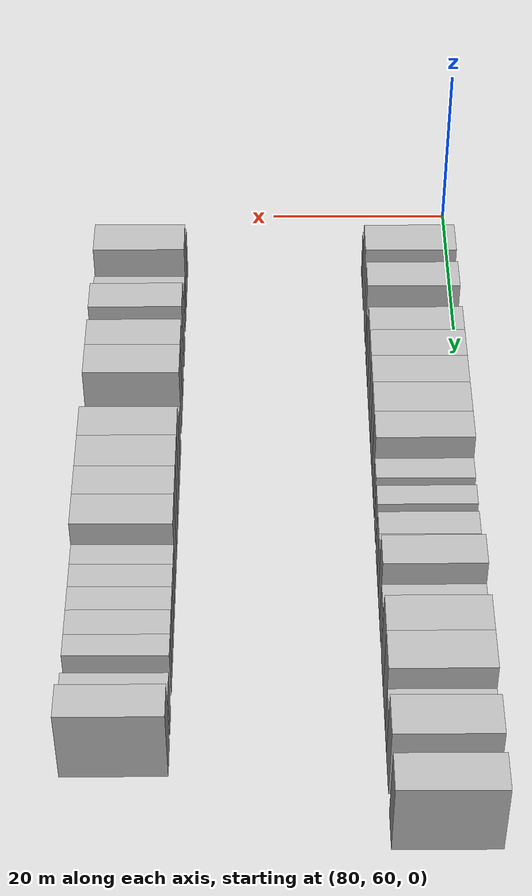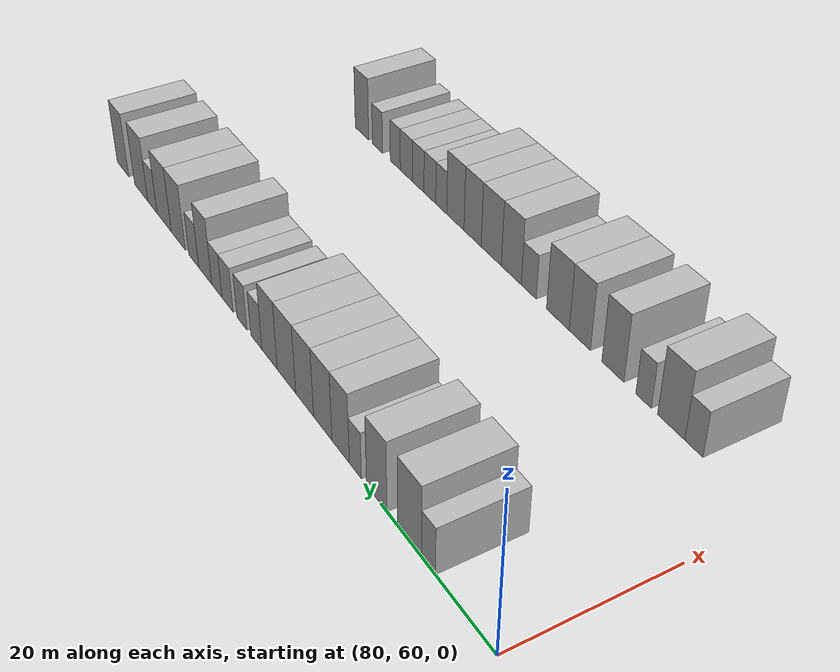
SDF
<sdf version="1.6">
 <world name="default">
  <model name="building_616">
   <static>1</static>
   <pose>85.0000 71.2811 0 0.000000 0.000000 0.000000</pose>
   <link name="link">
    <pose>0 0 3.00 0 0 0</pose>
    <collision name="collision"><geometry><box><size>10.0000 2.4149 6.0000</size></box></geometry></collision>
    <visual name="visual">
     <cast_shadows>0</cast_shadows>
     <geometry><box><size>10.0000 2.4149 6.0000</size></box></geometry>
     <material>
      <script>
       <uri>model://HANNAS_wall/materials/scripts</uri>
       <uri>model://HANNAS_wall/materials/textures</uri>
       <name>vrc/HANNAS_wall</name>
      </script>
     </material>
    </visual>
   </link>
  </model>
  <model name="building_617">
   <static>1</static>
   <pose>85.0000 74.6415 0 0.000000 0.000000 0.000000</pose>
   <link name="link">
    <pose>0 0 4.50 0 0 0</pose>
    <collision name="collision"><geometry><box><size>10.0000 4.3059 9.0000</size></box></geometry></collision>
    <visual name="visual">
     <cast_shadows>0</cast_shadows>
     <geometry><box><size>10.0000 4.3059 9.0000</size></box></geometry>
     <material>
      <script>
       <uri>model://HANNAS_wall/materials/scripts</uri>
       <uri>model://HANNAS_wall/materials/textures</uri>
       <name>vrc/HANNAS_wall</name>
      </script>
     </material>
    </visual>
   </link>
  </model>
  <model name="building_618">
   <static>1</static>
   <pose>85.0000 80.7590 0 0.000000 0.000000 0.000000</pose>
   <link name="link">
    <pose>0 0 4.50 0 0 0</pose>
    <collision name="collision"><geometry><box><size>10.0000 3.9290 9.0000</size></box></geometry></collision>
    <visual name="visual">
     <cast_shadows>0</cast_shadows>
     <geometry><box><size>10.0000 3.9290 9.0000</size></box></geometry>
     <material>
      <script>
       <uri>model://HANNAS_wall/materials/scripts</uri>
       <uri>model://HANNAS_wall/materials/textures</uri>
       <name>vrc/HANNAS_wall</name>
      </script>
     </material>
    </visual>
   </link>
  </model>
  <model name="building_619">
   <static>1</static>
   <pose>85.0000 84.9312 0 0.000000 0.000000 0.000000</pose>
   <link name="link">
    <pose>0 0 3.00 0 0 0</pose>
    <collision name="collision"><geometry><box><size>10.0000 2.4154 6.0000</size></box></geometry></collision>
    <visual name="visual">
     <cast_shadows>0</cast_shadows>
     <geometry><box><size>10.0000 2.4154 6.0000</size></box></geometry>
     <material>
      <script>
       <uri>model://HANNAS_wall/materials/scripts</uri>
       <uri>model://HANNAS_wall/materials/textures</uri>
       <name>vrc/HANNAS_wall</name>
      </script>
     </material>
    </visual>
   </link>
  </model>
  <model name="building_620">
   <static>1</static>
   <pose>85.0000 87.9405 0 0.000000 0.000000 0.000000</pose>
   <link name="link">
    <pose>0 0 4.50 0 0 0</pose>
    <collision name="collision"><geometry><box><size>10.0000 3.6033 9.0000</size></box></geometry></collision>
    <visual name="visual">
     <cast_shadows>0</cast_shadows>
     <geometry><box><size>10.0000 3.6033 9.0000</size></box></geometry>
     <material>
      <script>
       <uri>model://HANNAS_wall/materials/scripts</uri>
       <uri>model://HANNAS_wall/materials/textures</uri>
       <name>vrc/HANNAS_wall</name>
      </script>
     </material>
    </visual>
   </link>
  </model>
  <model name="building_621">
   <static>1</static>
   <pose>85.0000 91.7207 0 0.000000 0.000000 0.000000</pose>
   <link name="link">
    <pose>0 0 4.50 0 0 0</pose>
    <collision name="collision"><geometry><box><size>10.0000 3.9570 9.0000</size></box></geometry></collision>
    <visual name="visual">
     <cast_shadows>0</cast_shadows>
     <geometry><box><size>10.0000 3.9570 9.0000</size></box></geometry>
     <material>
      <script>
       <uri>model://HANNAS_wall/materials/scripts</uri>
       <uri>model://HANNAS_wall/materials/textures</uri>
       <name>vrc/HANNAS_wall</name>
      </script>
     </material>
    </visual>
   </link>
  </model>
  <model name="building_622">
   <static>1</static>
   <pose>85.0000 95.6966 0 0.000000 0.000000 0.000000</pose>
   <link name="link">
    <pose>0 0 4.50 0 0 0</pose>
    <collision name="collision"><geometry><box><size>10.0000 3.9948 9.0000</size></box></geometry></collision>
    <visual name="visual">
     <cast_shadows>0</cast_shadows>
     <geometry><box><size>10.0000 3.9948 9.0000</size></box></geometry>
     <material>
      <script>
       <uri>model://HANNAS_wall/materials/scripts</uri>
       <uri>model://HANNAS_wall/materials/textures</uri>
       <name>vrc/HANNAS_wall</name>
      </script>
     </material>
    </visual>
   </link>
  </model>
  <model name="building_623">
   <static>1</static>
   <pose>85.0000 99.8428 0 0.000000 0.000000 0.000000</pose>
   <link name="link">
    <pose>0 0 4.50 0 0 0</pose>
    <collision name="collision"><geometry><box><size>10.0000 4.2977 9.0000</size></box></geometry></collision>
    <visual name="visual">
     <cast_shadows>0</cast_shadows>
     <geometry><box><size>10.0000 4.2977 9.0000</size></box></geometry>
     <material>
      <script>
       <uri>model://HANNAS_wall/materials/scripts</uri>
       <uri>model://HANNAS_wall/materials/textures</uri>
       <name>vrc/HANNAS_wall</name>
      </script>
     </material>
    </visual>
   </link>
  </model>
  <model name="building_624">
   <static>1</static>
   <pose>85.0000 103.8436 0 0.000000 0.000000 0.000000</pose>
   <link name="link">
    <pose>0 0 4.50 0 0 0</pose>
    <collision name="collision"><geometry><box><size>10.0000 3.7039 9.0000</size></box></geometry></collision>
    <visual name="visual">
     <cast_shadows>0</cast_shadows>
     <geometry><box><size>10.0000 3.7039 9.0000</size></box></geometry>
     <material>
      <script>
       <uri>model://HANNAS_wall/materials/scripts</uri>
       <uri>model://HANNAS_wall/materials/textures</uri>
       <name>vrc/HANNAS_wall</name>
      </script>
     </material>
    </visual>
   </link>
  </model>
  <model name="building_625">
   <static>1</static>
   <pose>85.0000 107.0661 0 0.000000 0.000000 0.000000</pose>
   <link name="link">
    <pose>0 0 3.00 0 0 0</pose>
    <collision name="collision"><geometry><box><size>10.0000 2.7411 6.0000</size></box></geometry></collision>
    <visual name="visual">
     <cast_shadows>0</cast_shadows>
     <geometry><box><size>10.0000 2.7411 6.0000</size></box></geometry>
     <material>
      <script>
       <uri>model://HANNAS_wall/materials/scripts</uri>
       <uri>model://HANNAS_wall/materials/textures</uri>
       <name>vrc/HANNAS_wall</name>
      </script>
     </material>
    </visual>
   </link>
  </model>
  <model name="building_626">
   <static>1</static>
   <pose>85.0000 110.7178 0 0.000000 0.000000 0.000000</pose>
   <link name="link">
    <pose>0 0 3.00 0 0 0</pose>
    <collision name="collision"><geometry><box><size>10.0000 2.5623 6.0000</size></box></geometry></collision>
    <visual name="visual">
     <cast_shadows>0</cast_shadows>
     <geometry><box><size>10.0000 2.5623 6.0000</size></box></geometry>
     <material>
      <script>
       <uri>model://HANNAS_wall/materials/scripts</uri>
       <uri>model://HANNAS_wall/materials/textures</uri>
       <name>vrc/HANNAS_wall</name>
      </script>
     </material>
    </visual>
   </link>
  </model>
  <model name="building_627">
   <static>1</static>
   <pose>85.0000 114.4735 0 0.000000 0.000000 0.000000</pose>
   <link name="link">
    <pose>0 0 3.00 0 0 0</pose>
    <collision name="collision"><geometry><box><size>10.0000 2.9490 6.0000</size></box></geometry></collision>
    <visual name="visual">
     <cast_shadows>0</cast_shadows>
     <geometry><box><size>10.0000 2.9490 6.0000</size></box></geometry>
     <material>
      <script>
       <uri>model://HANNAS_wall/materials/scripts</uri>
       <uri>model://HANNAS_wall/materials/textures</uri>
       <name>vrc/HANNAS_wall</name>
      </script>
     </material>
    </visual>
   </link>
  </model>
  <model name="building_628">
   <static>1</static>
   <pose>85.0000 117.3416 0 0.000000 0.000000 0.000000</pose>
   <link name="link">
    <pose>0 0 3.00 0 0 0</pose>
    <collision name="collision"><geometry><box><size>10.0000 2.7871 6.0000</size></box></geometry></collision>
    <visual name="visual">
     <cast_shadows>0</cast_shadows>
     <geometry><box><size>10.0000 2.7871 6.0000</size></box></geometry>
     <material>
      <script>
       <uri>model://HANNAS_wall/materials/scripts</uri>
       <uri>model://HANNAS_wall/materials/textures</uri>
       <name>vrc/HANNAS_wall</name>
      </script>
     </material>
    </visual>
   </link>
  </model>
  <model name="building_629">
   <static>1</static>
   <pose>85.0000 120.5587 0 0.000000 0.000000 0.000000</pose>
   <link name="link">
    <pose>0 0 4.50 0 0 0</pose>
    <collision name="collision"><geometry><box><size>10.0000 3.6473 9.0000</size></box></geometry></collision>
    <visual name="visual">
     <cast_shadows>0</cast_shadows>
     <geometry><box><size>10.0000 3.6473 9.0000</size></box></geometry>
     <material>
      <script>
       <uri>model://HANNAS_wall/materials/scripts</uri>
       <uri>model://HANNAS_wall/materials/textures</uri>
       <name>vrc/HANNAS_wall</name>
      </script>
     </material>
    </visual>
   </link>
  </model>
  <model name="building_630">
   <static>1</static>
   <pose>85.0000 123.8173 0 0.000000 0.000000 0.000000</pose>
   <link name="link">
    <pose>0 0 3.00 0 0 0</pose>
    <collision name="collision"><geometry><box><size>10.0000 2.8698 6.0000</size></box></geometry></collision>
    <visual name="visual">
     <cast_shadows>0</cast_shadows>
     <geometry><box><size>10.0000 2.8698 6.0000</size></box></geometry>
     <material>
      <script>
       <uri>model://HANNAS_wall/materials/scripts</uri>
       <uri>model://HANNAS_wall/materials/textures</uri>
       <name>vrc/HANNAS_wall</name>
      </script>
     </material>
    </visual>
   </link>
  </model>
  <model name="building_631">
   <static>1</static>
   <pose>85.0000 128.3548 0 0.000000 0.000000 0.000000</pose>
   <link name="link">
    <pose>0 0 4.50 0 0 0</pose>
    <collision name="collision"><geometry><box><size>10.0000 4.2053 9.0000</size></box></geometry></collision>
    <visual name="visual">
     <cast_shadows>0</cast_shadows>
     <geometry><box><size>10.0000 4.2053 9.0000</size></box></geometry>
     <material>
      <script>
       <uri>model://HANNAS_wall/materials/scripts</uri>
       <uri>model://HANNAS_wall/materials/textures</uri>
       <name>vrc/HANNAS_wall</name>
      </script>
     </material>
    </visual>
   </link>
  </model>
  <model name="building_632">
   <static>1</static>
   <pose>85.0000 132.6540 0 0.000000 0.000000 0.000000</pose>
   <link name="link">
    <pose>0 0 4.50 0 0 0</pose>
    <collision name="collision"><geometry><box><size>10.0000 4.3931 9.0000</size></box></geometry></collision>
    <visual name="visual">
     <cast_shadows>0</cast_shadows>
     <geometry><box><size>10.0000 4.3931 9.0000</size></box></geometry>
     <material>
      <script>
       <uri>model://HANNAS_wall/materials/scripts</uri>
       <uri>model://HANNAS_wall/materials/textures</uri>
       <name>vrc/HANNAS_wall</name>
      </script>
     </material>
    </visual>
   </link>
  </model>
  <model name="building_633">
   <static>1</static>
   <pose>85.0000 136.3234 0 0.000000 0.000000 0.000000</pose>
   <link name="link">
    <pose>0 0 3.00 0 0 0</pose>
    <collision name="collision"><geometry><box><size>10.0000 2.9456 6.0000</size></box></geometry></collision>
    <visual name="visual">
     <cast_shadows>0</cast_shadows>
     <geometry><box><size>10.0000 2.9456 6.0000</size></box></geometry>
     <material>
      <script>
       <uri>model://HANNAS_wall/materials/scripts</uri>
       <uri>model://HANNAS_wall/materials/textures</uri>
       <name>vrc/HANNAS_wall</name>
      </script>
     </material>
    </visual>
   </link>
  </model>
  <model name="building_634">
   <static>1</static>
   <pose>85.0000 139.9516 0 0.000000 0.000000 0.000000</pose>
   <link name="link">
    <pose>0 0 4.50 0 0 0</pose>
    <collision name="collision"><geometry><box><size>10.0000 4.3108 9.0000</size></box></geometry></collision>
    <visual name="visual">
     <cast_shadows>0</cast_shadows>
     <geometry><box><size>10.0000 4.3108 9.0000</size></box></geometry>
     <material>
      <script>
       <uri>model://HANNAS_wall/materials/scripts</uri>
       <uri>model://HANNAS_wall/materials/textures</uri>
       <name>vrc/HANNAS_wall</name>
      </script>
     </material>
    </visual>
   </link>
  </model>
  <model name="building_635">
   <static>1</static>
   <pose>85.0000 146.0807 0 0.000000 0.000000 0.000000</pose>
   <link name="link">
    <pose>0 0 4.50 0 0 0</pose>
    <collision name="collision"><geometry><box><size>10.0000 3.9475 9.0000</size></box></geometry></collision>
    <visual name="visual">
     <cast_shadows>0</cast_shadows>
     <geometry><box><size>10.0000 3.9475 9.0000</size></box></geometry>
     <material>
      <script>
       <uri>model://HANNAS_wall/materials/scripts</uri>
       <uri>model://HANNAS_wall/materials/textures</uri>
       <name>vrc/HANNAS_wall</name>
      </script>
     </material>
    </visual>
   </link>
  </model>
  <model name="building_849">
   <static>1</static>
   <pose>115.0000 70.9228 0 0.000000 0.000000 0.000000</pose>
   <link name="link">
    <pose>0 0 3.00 0 0 0</pose>
    <collision name="collision"><geometry><box><size>10.0000 2.7869 6.0000</size></box></geometry></collision>
    <visual name="visual">
     <cast_shadows>0</cast_shadows>
     <geometry><box><size>10.0000 2.7869 6.0000</size></box></geometry>
     <material>
      <script>
       <uri>model://HANNAS_wall/materials/scripts</uri>
       <uri>model://HANNAS_wall/materials/textures</uri>
       <name>vrc/HANNAS_wall</name>
      </script>
     </material>
    </visual>
   </link>
  </model>
  <model name="building_850">
   <static>1</static>
   <pose>115.0000 74.4618 0 0.000000 0.000000 0.000000</pose>
   <link name="link">
    <pose>0 0 4.50 0 0 0</pose>
    <collision name="collision"><geometry><box><size>10.0000 4.2910 9.0000</size></box></geometry></collision>
    <visual name="visual">
     <cast_shadows>0</cast_shadows>
     <geometry><box><size>10.0000 4.2910 9.0000</size></box></geometry>
     <material>
      <script>
       <uri>model://HANNAS_wall/materials/scripts</uri>
       <uri>model://HANNAS_wall/materials/textures</uri>
       <name>vrc/HANNAS_wall</name>
      </script>
     </material>
    </visual>
   </link>
  </model>
  <model name="building_851">
   <static>1</static>
   <pose>115.0000 78.8880 0 0.000000 0.000000 0.000000</pose>
   <link name="link">
    <pose>0 0 3.00 0 0 0</pose>
    <collision name="collision"><geometry><box><size>10.0000 2.5614 6.0000</size></box></geometry></collision>
    <visual name="visual">
     <cast_shadows>0</cast_shadows>
     <geometry><box><size>10.0000 2.5614 6.0000</size></box></geometry>
     <material>
      <script>
       <uri>model://HANNAS_wall/materials/scripts</uri>
       <uri>model://HANNAS_wall/materials/textures</uri>
       <name>vrc/HANNAS_wall</name>
      </script>
     </material>
    </visual>
   </link>
  </model>
  <model name="building_852">
   <static>1</static>
   <pose>115.0000 84.0774 0 0.000000 0.000000 0.000000</pose>
   <link name="link">
    <pose>0 0 4.50 0 0 0</pose>
    <collision name="collision"><geometry><box><size>10.0000 3.8174 9.0000</size></box></geometry></collision>
    <visual name="visual">
     <cast_shadows>0</cast_shadows>
     <geometry><box><size>10.0000 3.8174 9.0000</size></box></geometry>
     <material>
      <script>
       <uri>model://HANNAS_wall/materials/scripts</uri>
       <uri>model://HANNAS_wall/materials/textures</uri>
       <name>vrc/HANNAS_wall</name>
      </script>
     </material>
    </visual>
   </link>
  </model>
  <model name="building_853">
   <static>1</static>
   <pose>115.0000 89.9340 0 0.000000 0.000000 0.000000</pose>
   <link name="link">
    <pose>0 0 4.50 0 0 0</pose>
    <collision name="collision"><geometry><box><size>10.0000 3.8958 9.0000</size></box></geometry></collision>
    <visual name="visual">
     <cast_shadows>0</cast_shadows>
     <geometry><box><size>10.0000 3.8958 9.0000</size></box></geometry>
     <material>
      <script>
       <uri>model://HANNAS_wall/materials/scripts</uri>
       <uri>model://HANNAS_wall/materials/textures</uri>
       <name>vrc/HANNAS_wall</name>
      </script>
     </material>
    </visual>
   </link>
  </model>
  <model name="building_854">
   <static>1</static>
   <pose>115.0000 94.0223 0 0.000000 0.000000 0.000000</pose>
   <link name="link">
    <pose>0 0 4.50 0 0 0</pose>
    <collision name="collision"><geometry><box><size>10.0000 4.2808 9.0000</size></box></geometry></collision>
    <visual name="visual">
     <cast_shadows>0</cast_shadows>
     <geometry><box><size>10.0000 4.2808 9.0000</size></box></geometry>
     <material>
      <script>
       <uri>model://HANNAS_wall/materials/scripts</uri>
       <uri>model://HANNAS_wall/materials/textures</uri>
       <name>vrc/HANNAS_wall</name>
      </script>
     </material>
    </visual>
   </link>
  </model>
  <model name="building_855">
   <static>1</static>
   <pose>115.0000 99.6557 0 0.000000 0.000000 0.000000</pose>
   <link name="link">
    <pose>0 0 3.00 0 0 0</pose>
    <collision name="collision"><geometry><box><size>10.0000 2.9859 6.0000</size></box></geometry></collision>
    <visual name="visual">
     <cast_shadows>0</cast_shadows>
     <geometry><box><size>10.0000 2.9859 6.0000</size></box></geometry>
     <material>
      <script>
       <uri>model://HANNAS_wall/materials/scripts</uri>
       <uri>model://HANNAS_wall/materials/textures</uri>
       <name>vrc/HANNAS_wall</name>
      </script>
     </material>
    </visual>
   </link>
  </model>
  <model name="building_856">
   <static>1</static>
   <pose>115.0000 103.1845 0 0.000000 0.000000 0.000000</pose>
   <link name="link">
    <pose>0 0 4.50 0 0 0</pose>
    <collision name="collision"><geometry><box><size>10.0000 4.0718 9.0000</size></box></geometry></collision>
    <visual name="visual">
     <cast_shadows>0</cast_shadows>
     <geometry><box><size>10.0000 4.0718 9.0000</size></box></geometry>
     <material>
      <script>
       <uri>model://HANNAS_wall/materials/scripts</uri>
       <uri>model://HANNAS_wall/materials/textures</uri>
       <name>vrc/HANNAS_wall</name>
      </script>
     </material>
    </visual>
   </link>
  </model>
  <model name="building_857">
   <static>1</static>
   <pose>115.0000 107.3602 0 0.000000 0.000000 0.000000</pose>
   <link name="link">
    <pose>0 0 4.50 0 0 0</pose>
    <collision name="collision"><geometry><box><size>10.0000 4.2795 9.0000</size></box></geometry></collision>
    <visual name="visual">
     <cast_shadows>0</cast_shadows>
     <geometry><box><size>10.0000 4.2795 9.0000</size></box></geometry>
     <material>
      <script>
       <uri>model://HANNAS_wall/materials/scripts</uri>
       <uri>model://HANNAS_wall/materials/textures</uri>
       <name>vrc/HANNAS_wall</name>
      </script>
     </material>
    </visual>
   </link>
  </model>
  <model name="building_858">
   <static>1</static>
   <pose>115.0000 111.3914 0 0.000000 0.000000 0.000000</pose>
   <link name="link">
    <pose>0 0 4.50 0 0 0</pose>
    <collision name="collision"><geometry><box><size>10.0000 3.7830 9.0000</size></box></geometry></collision>
    <visual name="visual">
     <cast_shadows>0</cast_shadows>
     <geometry><box><size>10.0000 3.7830 9.0000</size></box></geometry>
     <material>
      <script>
       <uri>model://HANNAS_wall/materials/scripts</uri>
       <uri>model://HANNAS_wall/materials/textures</uri>
       <name>vrc/HANNAS_wall</name>
      </script>
     </material>
    </visual>
   </link>
  </model>
  <model name="building_859">
   <static>1</static>
   <pose>115.0000 115.2503 0 0.000000 0.000000 0.000000</pose>
   <link name="link">
    <pose>0 0 4.50 0 0 0</pose>
    <collision name="collision"><geometry><box><size>10.0000 3.9346 9.0000</size></box></geometry></collision>
    <visual name="visual">
     <cast_shadows>0</cast_shadows>
     <geometry><box><size>10.0000 3.9346 9.0000</size></box></geometry>
     <material>
      <script>
       <uri>model://HANNAS_wall/materials/scripts</uri>
       <uri>model://HANNAS_wall/materials/textures</uri>
       <name>vrc/HANNAS_wall</name>
      </script>
     </material>
    </visual>
   </link>
  </model>
  <model name="building_860">
   <static>1</static>
   <pose>115.0000 118.4764 0 0.000000 0.000000 0.000000</pose>
   <link name="link">
    <pose>0 0 3.00 0 0 0</pose>
    <collision name="collision"><geometry><box><size>10.0000 2.5176 6.0000</size></box></geometry></collision>
    <visual name="visual">
     <cast_shadows>0</cast_shadows>
     <geometry><box><size>10.0000 2.5176 6.0000</size></box></geometry>
     <material>
      <script>
       <uri>model://HANNAS_wall/materials/scripts</uri>
       <uri>model://HANNAS_wall/materials/textures</uri>
       <name>vrc/HANNAS_wall</name>
      </script>
     </material>
    </visual>
   </link>
  </model>
  <model name="building_861">
   <static>1</static>
   <pose>115.0000 121.1455 0 0.000000 0.000000 0.000000</pose>
   <link name="link">
    <pose>0 0 3.00 0 0 0</pose>
    <collision name="collision"><geometry><box><size>10.0000 2.8207 6.0000</size></box></geometry></collision>
    <visual name="visual">
     <cast_shadows>0</cast_shadows>
     <geometry><box><size>10.0000 2.8207 6.0000</size></box></geometry>
     <material>
      <script>
       <uri>model://HANNAS_wall/materials/scripts</uri>
       <uri>model://HANNAS_wall/materials/textures</uri>
       <name>vrc/HANNAS_wall</name>
      </script>
     </material>
    </visual>
   </link>
  </model>
  <model name="building_862">
   <static>1</static>
   <pose>115.0000 123.9806 0 0.000000 0.000000 0.000000</pose>
   <link name="link">
    <pose>0 0 3.00 0 0 0</pose>
    <collision name="collision"><geometry><box><size>10.0000 2.8494 6.0000</size></box></geometry></collision>
    <visual name="visual">
     <cast_shadows>0</cast_shadows>
     <geometry><box><size>10.0000 2.8494 6.0000</size></box></geometry>
     <material>
      <script>
       <uri>model://HANNAS_wall/materials/scripts</uri>
       <uri>model://HANNAS_wall/materials/textures</uri>
       <name>vrc/HANNAS_wall</name>
      </script>
     </material>
    </visual>
   </link>
  </model>
  <model name="building_863">
   <static>1</static>
   <pose>115.0000 126.8814 0 0.000000 0.000000 0.000000</pose>
   <link name="link">
    <pose>0 0 3.00 0 0 0</pose>
    <collision name="collision"><geometry><box><size>10.0000 2.9522 6.0000</size></box></geometry></collision>
    <visual name="visual">
     <cast_shadows>0</cast_shadows>
     <geometry><box><size>10.0000 2.9522 6.0000</size></box></geometry>
     <material>
      <script>
       <uri>model://HANNAS_wall/materials/scripts</uri>
       <uri>model://HANNAS_wall/materials/textures</uri>
       <name>vrc/HANNAS_wall</name>
      </script>
     </material>
    </visual>
   </link>
  </model>
  <model name="building_864">
   <static>1</static>
   <pose>115.0000 129.6280 0 0.000000 0.000000 0.000000</pose>
   <link name="link">
    <pose>0 0 3.00 0 0 0</pose>
    <collision name="collision"><geometry><box><size>10.0000 2.5409 6.0000</size></box></geometry></collision>
    <visual name="visual">
     <cast_shadows>0</cast_shadows>
     <geometry><box><size>10.0000 2.5409 6.0000</size></box></geometry>
     <material>
      <script>
       <uri>model://HANNAS_wall/materials/scripts</uri>
       <uri>model://HANNAS_wall/materials/textures</uri>
       <name>vrc/HANNAS_wall</name>
      </script>
     </material>
    </visual>
   </link>
  </model>
  <model name="building_865">
   <static>1</static>
   <pose>115.0000 134.2142 0 0.000000 0.000000 0.000000</pose>
   <link name="link">
    <pose>0 0 3.00 0 0 0</pose>
    <collision name="collision"><geometry><box><size>10.0000 2.6315 6.0000</size></box></geometry></collision>
    <visual name="visual">
     <cast_shadows>0</cast_shadows>
     <geometry><box><size>10.0000 2.6315 6.0000</size></box></geometry>
     <material>
      <script>
       <uri>model://HANNAS_wall/materials/scripts</uri>
       <uri>model://HANNAS_wall/materials/textures</uri>
       <name>vrc/HANNAS_wall</name>
      </script>
     </material>
    </visual>
   </link>
  </model>
  <model name="building_866">
   <static>1</static>
   <pose>115.0000 138.3422 0 0.000000 0.000000 0.000000</pose>
   <link name="link">
    <pose>0 0 4.50 0 0 0</pose>
    <collision name="collision"><geometry><box><size>10.0000 3.6245 9.0000</size></box></geometry></collision>
    <visual name="visual">
     <cast_shadows>0</cast_shadows>
     <geometry><box><size>10.0000 3.6245 9.0000</size></box></geometry>
     <material>
      <script>
       <uri>model://HANNAS_wall/materials/scripts</uri>
       <uri>model://HANNAS_wall/materials/textures</uri>
       <name>vrc/HANNAS_wall</name>
      </script>
     </material>
    </visual>
   </link>
  </model>
 </world>
</sdf>
